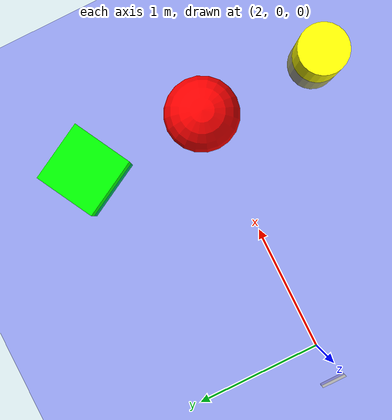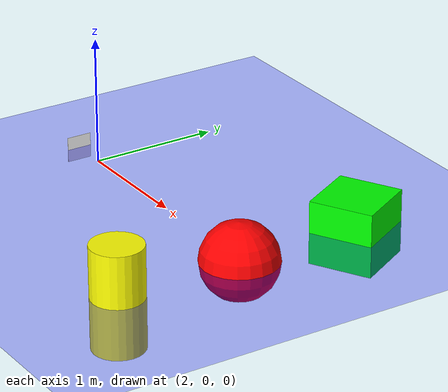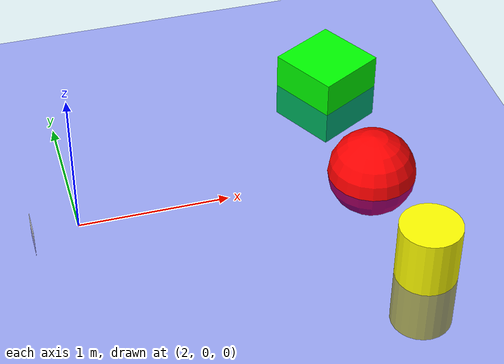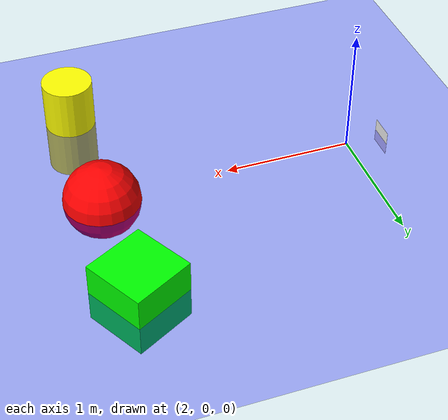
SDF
<?xml version="1.0" ?>
<sdf version="1.6">
  <world name="ocean">

    <scene>
      <grid>false</grid>
    </scene>

    <physics name="10ms" type="ode">
      <max_step_size>0.01</max_step_size>
      <real_time_factor>1.0</real_time_factor>
    </physics>
    <plugin
      filename="ignition-gazebo-physics-system"
      name="ignition::gazebo::systems::Physics">
    </plugin>
    <plugin
      filename="ignition-gazebo-user-commands-system"
      name="ignition::gazebo::systems::UserCommands">
    </plugin>
    <plugin
      filename="ignition-gazebo-scene-broadcaster-system"
      name="ignition::gazebo::systems::SceneBroadcaster">
    </plugin>
    <plugin
      filename="ignition-gazebo-imu-system"
      name="ignition::gazebo::systems::Imu">
    </plugin>
    <plugin
      filename="ignition-gazebo-sensors-system"
      name="ignition::gazebo::systems::Sensors">
      <render_engine>ogre2</render_engine>
    </plugin>
    <plugin
      filename="ignition-gazebo-buoyancy-system"
      name="ignition::gazebo::systems::Buoyancy">
      <graded_buoyancy>
        <default_density>1000</default_density>
        <density_change>
          <above_depth>0</above_depth>
          <density>1</density>
        </density_change>
      </graded_buoyancy>
    </plugin>

    <light type="directional" name="sun">
      <cast_shadows>true</cast_shadows>
      <pose>0 0 10 0 0 0</pose>
      <diffuse>1 1 1 1</diffuse>
      <specular>0.5 0.5 0.5 1</specular>
      <attenuation>
        <range>1000</range>
        <constant>0.9</constant>
        <linear>0.01</linear>
        <quadratic>0.001</quadratic>
      </attenuation>
      <direction>-0.5 0.1 -0.9</direction>
    </light>

    <model name="water_plane">
      <static>true</static>
      <link name="link">
        <visual name="water_plane">
          <geometry>
            <plane>
              <size>100 100</size>
              <normal>0 0 1</normal>
            </plane>
          </geometry>
          <material>
            <ambient>0 0 1 0.5</ambient>
            <diffuse>0 0 1 0.5</diffuse>
            <specular>0 0 1 0.5</specular>
          </material>
        </visual>
      </link>
    </model>

    <!-- Colorful verification objects -->
    <model name="red_sphere">
      <static>true</static>
      <pose>4.0 0.0 0.0 0 0 0</pose>
      <link name="link">
        <visual name="visual">
          <geometry>
            <sphere>
              <radius>0.3</radius>
            </sphere>
          </geometry>
          <material>
            <ambient>1.0 0.0 0.0 1.0</ambient>
            <diffuse>1.0 0.0 0.0 1.0</diffuse>
            <specular>1.0 0.0 0.0 1.0</specular>
          </material>
        </visual>
        <collision name="collision">
          <geometry>
            <sphere>
              <radius>0.3</radius>
            </sphere>
          </geometry>
        </collision>
      </link>
    </model>

    <model name="green_box">
      <static>true</static>
      <pose>4.0 1.0 0.0 0 0 0.5</pose>
      <link name="link">
        <visual name="visual">
          <geometry>
            <box>
              <size>0.5 0.5 0.5</size>
            </box>
          </geometry>
          <material>
            <ambient>0.0 1.0 0.0 1.0</ambient>
            <diffuse>0.0 1.0 0.0 1.0</diffuse>
            <specular>0.0 1.0 0.0 1.0</specular>
          </material>
        </visual>
        <collision name="collision">
          <geometry>
            <box>
              <size>0.5 0.5 0.5</size>
            </box>
          </geometry>
        </collision>
      </link>
    </model>

    <model name="yellow_cylinder">
      <static>true</static>
      <pose>4.0 -1.0 0.0 0 0 0</pose>
      <link name="link">
        <visual name="visual">
          <geometry>
            <cylinder>
              <radius>0.2</radius>
              <length>0.8</length>
            </cylinder>
          </geometry>
          <material>
            <ambient>1.0 1.0 0.0 1.0</ambient>
            <diffuse>1.0 1.0 0.0 1.0</diffuse>
            <specular>1.0 1.0 0.0 1.0</specular>
          </material>
        </visual>
        <collision name="collision">
          <geometry>
            <cylinder>
              <radius>0.2</radius>
              <length>0.8</length>
            </cylinder>
          </geometry>
        </collision>
      </link>
    </model>

    <model name="tag36_11_00000">
      <static>true</static>
      <pose>1.7 0.002591 -0.001828 0 1.57 0</pose>
      <link name="link">
        <visual name="visual">
          <geometry>
            <box>
              <size>0.2 0.2 0.001</size>
            </box>
          </geometry>
          <material>
            <ambient>1 1 1 1</ambient>
            <diffuse>1 1 1 1</diffuse>
            <specular>0.5 0.5 0.5 1</specular>
            <pbr>
              <metal>
                <albedo_map>model://Apriltag36_11_00000/materials/textures/tag36_11_00000.png</albedo_map>
                <roughness>0.5</roughness>
                <metalness>0.0</metalness>
              </metal>
            </pbr>
          </material>
        </visual>
        <collision name="collision">
          <geometry>
            <box>
              <size>0.2 0.2 0.001</size>
            </box>
          </geometry>
        </collision>
      </link>
    </model>

  </world>
</sdf>
